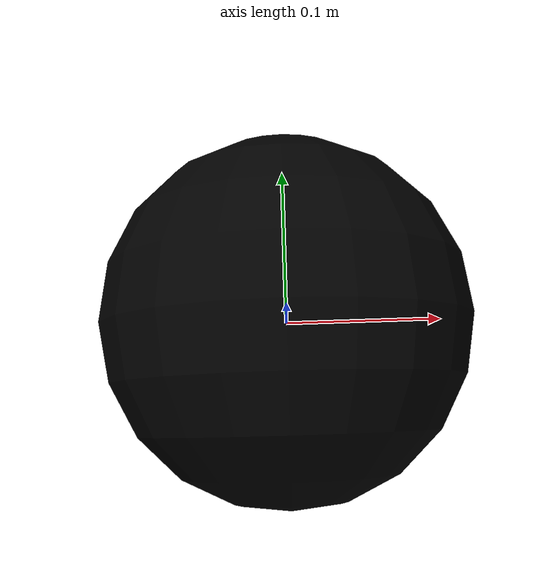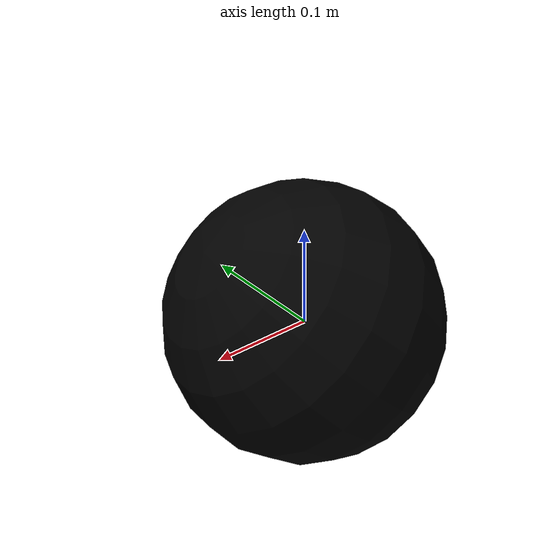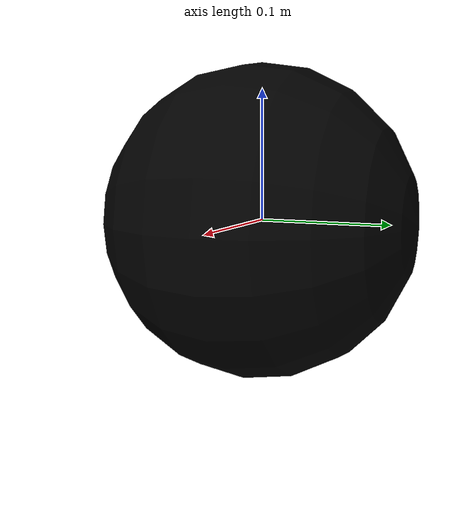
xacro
<?xml version="1.0"?>
<robot name="agv" xmlns:xacro="http://ros.org/wiki/xacro">
  <material name="Black">
    <color rgba="0.0 0.0 0.0 1.0"/>
  </material>

  <material name="White">
    <color rgba="1.0 1.0 1.0 1.0"/>
  </material>

  <!--All units in m-kg-s-radians unit system -->
  <xacro:property name="M_PI" value="3.1415926535897931" />
  <xacro:property name="M_PI_2" value="1.570796327" />
  <xacro:property name="DEG_TO_RAD" value="0.017453293" />

  <!-- AGV Base -->
  <xacro:property name="agv_base_height" value="0.27" />
  <xacro:property name="agv_base_width" value="0.5" />
  <xacro:property name="agv_base_length" value="0.7" />
  <xacro:property name="agv_base_mass" value="70.0" />

  <!-- Macro for calculating inertia of cube -->
  <xacro:macro name="cuboid_inertia" params="m w d h">
    <inertia  ixx="${m*(w*w+h*h)/12}" ixy = "0" ixz = "0"
              iyy="${m*(d*d+h*h)/12}" iyz = "0"
              izz="${m*(d*d+w*w)/12}" />
  </xacro:macro>
  <xacro:macro name="cylinder_inertia" params="m r h">
    <inertia  ixx="${m*(3*r*r+h*h)/12}" ixy = "0" ixz = "0"
              iyy="${m*(3*r*r+h*h)/12}" iyz = "0"
              izz="${m*r*r/2}" />
  </xacro:macro>
  <xacro:macro name="sphere_inertia" params="m r">
    <inertia  ixx="${2*m*r*r/5}" ixy = "0" ixz = "0"
              iyy="${2*m*r*r/5}" iyz = "0"
              izz="${2*m*r*r/5}" />
  </xacro:macro>

  <link name="base_footprint"/>

  <joint name="base_footprint_agv_base_joint" type="fixed">
    <origin xyz="0 0 0" rpy="0 0 0" />
    <parent link="base_footprint"/>
    <child link="agv_base_link" />
    <dynamics damping="0.001" friction="1.0"/>
  </joint>
  <gazebo reference="base_footprint_agv_base_joint">
     <stopCfm>0.0001</stopCfm>
     <stopErp>0.8</stopErp>
     <provideFeedback>true</provideFeedback>
     <implicitSpringDamper>true</implicitSpringDamper>
   </gazebo>

  <link name="agv_base_link">
   <visual>
      <origin xyz="0 0 0" rpy="${M_PI_2} 0 0" />
      <geometry>
        <sphere radius="0.12"/>
      </geometry>
      <material name="Black" />
    </visual>

    <inertial>
      <mass value="10.0" />
      <origin xyz="0 0 0" rpy="${M_PI_2} 0 0" />
      <sphere_inertia  m="10.0" r="1.0" />
    </inertial>

    <collision>
      <origin xyz="0 0 0" rpy="${M_PI_2} 0 0" />
      <geometry>
        <sphere radius="0.12"/>
      </geometry>
    </collision>
  </link>

  <gazebo reference="agv_base_link">
    <collision>
      <surface>
        <friction>
          <torsional>
            <coefficient>0.0</coefficient>
          </torsional>
          <ode>
            <mu>0</mu>
            <mu2>0</mu2>
            <fdir1>0 0 0</fdir1>
            <slip1>0</slip1>
            <slip2>0</slip2>
          </ode>
        </friction>
      </surface>
    </collision>
  </gazebo>
</robot>
